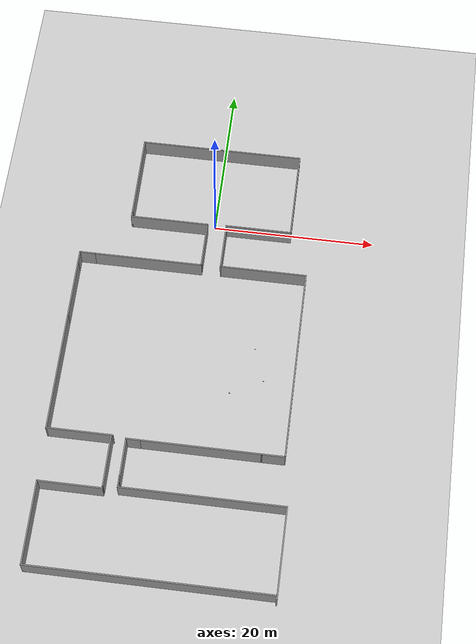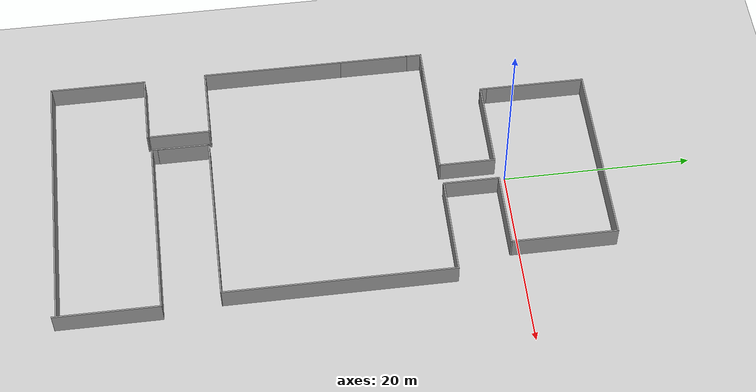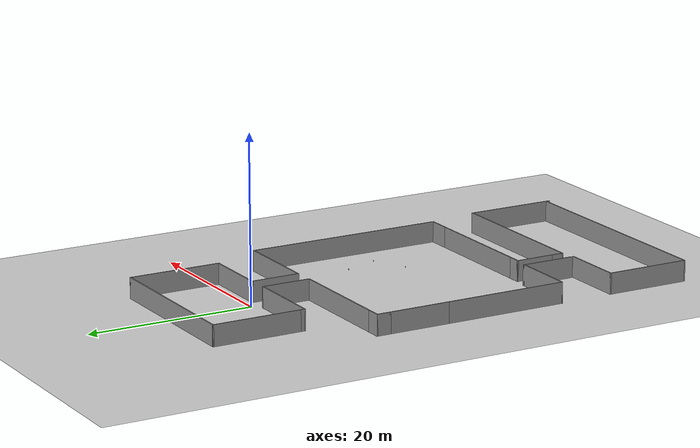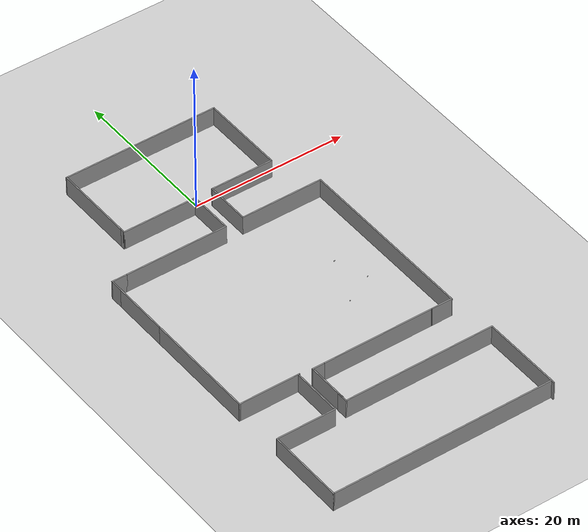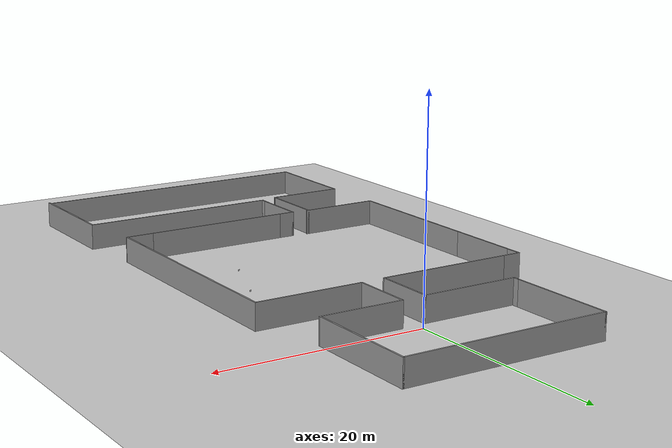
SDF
<sdf version="1.6">
 <world name="default">
  <light name="sun" type="directional">
   <pose>0 0 10 0 -0 0</pose>
   <diffuse>0.8 0.8 0.8 1</diffuse>
   <specular>0.2 0.2 0.2 1</specular>
   <attenuation>
    <range>1000</range>
    <constant>0.9</constant>
    <linear>0.01</linear>
    <quadratic>0.001</quadratic>
   </attenuation>
   <direction>-0.5 0.1 -0.9</direction>
  </light>
  <model name="ground_plane">
   <static>1</static>
   <link name="link">
    <collision name="collision">
     <geometry><plane><normal>0 0 1</normal><size>100 100</size></plane></geometry>
     <surface>
      <contact><collide_bitmask>65535</collide_bitmask></contact>
      <friction><ode><mu>100</mu><mu2>50</mu2></ode></friction>
     </surface>
    </collision>
    <visual name="visual">
     <cast_shadows>0</cast_shadows>
     <geometry><plane><normal>0 0 1</normal><size>100 100</size></plane></geometry>
     <material>
      <script><uri>file://media/materials/scripts/gazebo.material</uri><name>Gazebo/Grey</name></script>
     </material>
    </visual>
   </link>
  </model>
  <gravity>0 0 -9.8</gravity>
  <magnetic_field>6e-06 2.3e-05 -4.2e-05</magnetic_field>
  <atmosphere type="adiabatic"/>
  <physics name="default_physics" default="0" type="ode">
   <max_step_size>0.002</max_step_size>
   <real_time_factor>1</real_time_factor>
   <real_time_update_rate>2500</real_time_update_rate>
  </physics>
  <scene><ambient>0.4 0.4 0.4 1</ambient><background>0.7 0.7 0.7 1</background><shadows>1</shadows></scene>
  <audio><device>default</device></audio>
  <spherical_coordinates>
   <surface_model>EARTH_WGS84</surface_model>
   <latitude_deg>0</latitude_deg>
   <longitude_deg>0</longitude_deg>
   <elevation>0</elevation>
   <heading_deg>0</heading_deg>
  </spherical_coordinates>
  <model name="rock">
   <link name="link">
    <inertial>
     <mass>1</mass>
     <inertia><ixx>1</ixx><ixy>0</ixy><ixz>0</ixz><iyy>1</iyy><iyz>0</iyz><izz>1</izz></inertia>
    </inertial>
    <visual name="visual">
     <geometry><mesh><scale>1 1 1</scale><uri>model://rock/meshes/model.dae</uri></mesh></geometry>
     <transparency>1</transparency>
     <material>
      <shader type="vertex"><normal_map>__default__</normal_map></shader>
      <script><name>ModelPreview_1::link::visual_MATERIAL_</name><uri>__default__</uri></script>
      <ambient>0 0 0 1</ambient>
      <diffuse>0 0 0 1</diffuse>
      <specular>0 0 0 1</specular>
      <emissive>0 0 0 1</emissive>
     </material>
    </visual>
    <collision name="collision">
     <geometry>
      <mesh><uri>/usr/share/gazebo-9/models/rock/meshes/model.dae</uri><scale>1 1 1</scale></mesh>
     </geometry>
     <surface>
      <friction>
       <ode><mu>1</mu><mu2>1</mu2><fdir1>0 0 0</fdir1><slip1>0</slip1><slip2>0</slip2></ode>
       <torsional>
        <coefficient>1</coefficient>
        <patch_radius>0</patch_radius>
        <surface_radius>0</surface_radius>
        <use_patch_radius>1</use_patch_radius>
        <ode><slip>0</slip></ode>
       </torsional>
      </friction>
      <bounce><restitution_coefficient>0</restitution_coefficient><threshold>1e+06</threshold></bounce>
      <contact>
       <collide_without_contact>0</collide_without_contact>
       <collide_without_contact_bitmask>1</collide_without_contact_bitmask>
       <collide_bitmask>1</collide_bitmask>
       <ode>
        <soft_cfm>0</soft_cfm>
        <soft_erp>0.2</soft_erp>
        <kp>1e+13</kp>
        <kd>1</kd>
        <max_vel>0.01</max_vel>
        <min_depth>0</min_depth>
       </ode>
       <bullet>
        <split_impulse>1</split_impulse>
        <split_impulse_penetration_threshold>-0.01</split_impulse_penetration_threshold>
        <soft_cfm>0</soft_cfm>
        <soft_erp>0.2</soft_erp>
        <kp>1e+13</kp>
        <kd>1</kd>
       </bullet>
      </contact>
     </surface>
    </collision>
   </link>
   <static>1</static>
   <pose>1.77676 1.6025 0 0 -0 0</pose>
  </model>
  <model name="rock_0">
   <link name="link">
    <inertial>
     <mass>1</mass>
     <inertia><ixx>1</ixx><ixy>0</ixy><ixz>0</ixz><iyy>1</iyy><iyz>0</iyz><izz>1</izz></inertia>
    </inertial>
    <visual name="visual">
     <geometry><mesh><scale>1 1 1</scale><uri>model://rock/meshes/model.dae</uri></mesh></geometry>
     <transparency>1</transparency>
     <material>
      <shader type="vertex"><normal_map>__default__</normal_map></shader>
      <script><name>ModelPreview_1::link::visual_MATERIAL_</name><uri>__default__</uri></script>
      <ambient>0 0 0 1</ambient>
      <diffuse>0 0 0 1</diffuse>
      <specular>0 0 0 1</specular>
      <emissive>0 0 0 1</emissive>
     </material>
    </visual>
    <collision name="collision">
     <geometry>
      <mesh><uri>/usr/share/gazebo-9/models/rock/meshes/model.dae</uri><scale>1 1 1</scale></mesh>
     </geometry>
     <surface>
      <friction>
       <ode><mu>1</mu><mu2>1</mu2><fdir1>0 0 0</fdir1><slip1>0</slip1><slip2>0</slip2></ode>
       <torsional>
        <coefficient>1</coefficient>
        <patch_radius>0</patch_radius>
        <surface_radius>0</surface_radius>
        <use_patch_radius>1</use_patch_radius>
        <ode><slip>0</slip></ode>
       </torsional>
      </friction>
      <bounce><restitution_coefficient>0</restitution_coefficient><threshold>1e+06</threshold></bounce>
      <contact>
       <collide_without_contact>0</collide_without_contact>
       <collide_without_contact_bitmask>1</collide_without_contact_bitmask>
       <collide_bitmask>1</collide_bitmask>
       <ode>
        <soft_cfm>0</soft_cfm>
        <soft_erp>0.2</soft_erp>
        <kp>1e+13</kp>
        <kd>1</kd>
        <max_vel>0.01</max_vel>
        <min_depth>0</min_depth>
       </ode>
       <bullet>
        <split_impulse>1</split_impulse>
        <split_impulse_penetration_threshold>-0.01</split_impulse_penetration_threshold>
        <soft_cfm>0</soft_cfm>
        <soft_erp>0.2</soft_erp>
        <kp>1e+13</kp>
        <kd>1</kd>
       </bullet>
      </contact>
     </surface>
    </collision>
   </link>
   <static>1</static>
   <pose>12.6931 -7.30024 0 0 -0 0</pose>
  </model>
  <model name="tietu_4">
   <static>1</static>
   <link name="link">
    <pose>0 0 0.1 1.57 -0 0</pose>
    <collision name="collision">
     <geometry><plane><normal>0 0 1</normal><size>0.15 0.15</size></plane></geometry>
     <surface><friction><ode><mu>100</mu><mu2>50</mu2></ode></friction></surface>
    </collision>
    <visual name="visual">
     <cast_shadows>0</cast_shadows>
     <geometry><plane><normal>0 0 1</normal><size>0.15 0.15</size></plane></geometry>
     <material>
      <script>
       <uri>model://tietu/materials/scripts</uri>
       <uri>model://tietu/materials/textures</uri>
       <name>tietu</name>
      </script>
     </material>
    </visual>
   </link>
   <pose>6.95986 -16.43 0 0 -0 0</pose>
  </model>
  <model name="tietu2_3">
   <static>1</static>
   <link name="link">
    <pose>0 0 0.1 1.57 -0 0</pose>
    <collision name="collision">
     <geometry><plane><normal>0 0 1</normal><size>0.15 0.15</size></plane></geometry>
     <surface><friction><ode><mu>100</mu><mu2>50</mu2></ode></friction></surface>
    </collision>
    <visual name="visual">
     <cast_shadows>0</cast_shadows>
     <geometry><plane><normal>0 0 1</normal><size>0.15 0.15</size></plane></geometry>
     <material>
      <script>
       <uri>model://tietu2/materials/scripts</uri>
       <uri>model://tietu2/materials/textures</uri>
       <name>tietu2</name>
      </script>
     </material>
    </visual>
   </link>
   <pose>4.56237 -22.6092 0 0 -0 0</pose>
  </model>
  <model name="tietu2_4">
   <static>1</static>
   <link name="link">
    <pose>0 0 0.1 1.57 -0 0</pose>
    <collision name="collision">
     <geometry><plane><normal>0 0 1</normal><size>0.15 0.15</size></plane></geometry>
     <surface><friction><ode><mu>100</mu><mu2>50</mu2></ode></friction></surface>
    </collision>
    <visual name="visual">
     <cast_shadows>0</cast_shadows>
     <geometry><plane><normal>0 0 1</normal><size>0.15 0.15</size></plane></geometry>
     <material>
      <script>
       <uri>model://tietu2/materials/scripts</uri>
       <uri>model://tietu2/materials/textures</uri>
       <name>tietu2</name>
      </script>
     </material>
    </visual>
   </link>
   <pose>8.433 -20.583 0 0 -0 0</pose>
  </model>
  <model name="Untitled_0">
   <pose>-1.5624 -18.819 0 0 -0 0</pose>
   <link name="Wall_104">
    <collision name="Wall_104_Collision">
     <geometry><box><size>7.5 0.15 2.5</size></box></geometry>
     <pose>0 0 1.25 0 -0 0</pose>
    </collision>
    <visual name="Wall_104_Visual">
     <pose>0 0 1.25 0 -0 0</pose>
     <geometry><box><size>7.5 0.15 2.5</size></box></geometry>
     <material>
      <script><uri>file://media/materials/scripts/gazebo.material</uri><name>Gazebo/Grey</name></script>
      <ambient>1 1 1 1</ambient>
     </material>
     <meta><layer>0</layer></meta>
    </visual>
    <pose>-14.5372 6.65347 0 0 -0 -1.5708</pose>
   </link>
   <link name="Wall_106">
    <collision name="Wall_106_Collision">
     <geometry><box><size>15 0.15 2.5</size></box></geometry>
     <pose>0 0 1.25 0 -0 0</pose>
    </collision>
    <visual name="Wall_106_Visual">
     <pose>0 0 1.25 0 -0 0</pose>
     <geometry><box><size>15 0.15 2.5</size></box></geometry>
     <material>
      <script><uri>file://media/materials/scripts/gazebo.material</uri><name>Gazebo/Grey</name></script>
      <ambient>1 1 1 1</ambient>
     </material>
     <meta><layer>0</layer></meta>
    </visual>
    <pose>-14.5372 -4.44653 0 0 -0 -1.5708</pose>
   </link>
   <link name="Wall_109">
    <collision name="Wall_109_Collision">
     <geometry><box><size>8.03429 0.15 2.5</size></box></geometry>
     <pose>0 0 1.25 0 -0 0</pose>
    </collision>
    <visual name="Wall_109_Visual">
     <pose>0 0 1.25 0 -0 0</pose>
     <geometry><box><size>8.03429 0.15 2.5</size></box></geometry>
     <material>
      <script><uri>file://media/materials/scripts/gazebo.material</uri><name>Gazebo/Grey</name></script>
      <ambient>1 1 1 1</ambient>
     </material>
     <meta><layer>0</layer></meta>
    </visual>
    <pose>-10.5951 -11.8715 0 0 -0 0</pose>
   </link>
   <link name="Wall_110">
    <collision name="Wall_110_Collision">
     <geometry><box><size>6.5 0.15 2.5</size></box></geometry>
     <pose>0 0 1.25 0 -0 0</pose>
    </collision>
    <visual name="Wall_110_Visual">
     <pose>0 0 1.25 0 -0 0</pose>
     <geometry><box><size>6.5 0.15 2.5</size></box></geometry>
     <material>
      <script><uri>file://media/materials/scripts/gazebo.material</uri><name>Gazebo/Grey</name></script>
      <ambient>1 1 1 1</ambient>
     </material>
     <meta><layer>0</layer></meta>
    </visual>
    <pose>-6.79505 -15.0465 0 0 -0 -1.5708</pose>
   </link>
   <link name="Wall_114">
    <collision name="Wall_114_Collision">
     <geometry><box><size>14.5 0.15 2.5</size></box></geometry>
     <pose>0 0 1.25 0 -0 0</pose>
    </collision>
    <visual name="Wall_114_Visual">
     <pose>0 0 1.25 0 -0 0</pose>
     <geometry><box><size>14.5 0.15 2.5</size></box></geometry>
     <material>
      <script><uri>file://media/materials/scripts/gazebo.material</uri><name>Gazebo/Grey</name></script>
      <ambient>1 1 1 1</ambient>
     </material>
     <meta><layer>0</layer></meta>
    </visual>
    <pose>3.74369 -12.0851 0 0 -0 0</pose>
   </link>
   <link name="Wall_116">
    <collision name="Wall_116_Collision">
     <geometry><box><size>1.75 0.15 2.5</size></box></geometry>
     <pose>0 0 1.25 0 -0 0</pose>
    </collision>
    <visual name="Wall_116_Visual">
     <pose>0 0 1.25 0 -0 0</pose>
     <geometry><box><size>1.75 0.15 2.5</size></box></geometry>
     <material>
      <script><uri>file://media/materials/scripts/gazebo.material</uri><name>Gazebo/Grey</name></script>
      <ambient>1 1 1 1</ambient>
     </material>
     <meta><layer>0</layer></meta>
    </visual>
    <pose>-4.23131 -12.0851 0 0 -0 3.14159</pose>
   </link>
   <link name="Wall_118">
    <collision name="Wall_118_Collision">
     <geometry><box><size>5.5 0.15 2.5</size></box></geometry>
     <pose>0 0 1.25 0 -0 0</pose>
    </collision>
    <visual name="Wall_118_Visual">
     <pose>0 0 1.25 0 -0 0</pose>
     <geometry><box><size>5.5 0.15 2.5</size></box></geometry>
     <material>
      <script><uri>file://media/materials/scripts/gazebo.material</uri><name>Gazebo/Grey</name></script>
      <ambient>1 1 1 1</ambient>
     </material>
     <meta><layer>0</layer></meta>
    </visual>
    <pose>-5.03131 -14.7601 0 0 -0 -1.5708</pose>
   </link>
   <link name="Wall_122">
    <collision name="Wall_122_Collision">
     <geometry><box><size>1.5 0.15 2.5</size></box></geometry>
     <pose>0 0 1.25 0 -0 0</pose>
    </collision>
    <visual name="Wall_122_Visual">
     <pose>0 0 1.25 0 -0 0</pose>
     <geometry><box><size>1.5 0.15 2.5</size></box></geometry>
     <material>
      <script><uri>file://media/materials/scripts/gazebo.material</uri><name>Gazebo/Grey</name></script>
      <ambient>1 1 1 1</ambient>
     </material>
     <meta><layer>0</layer></meta>
    </visual>
    <pose>-5.0628 -17.4535 0 0 -0 -1.5708</pose>
   </link>
   <link name="Wall_124">
    <collision name="Wall_124_Collision">
     <geometry><box><size>10.75 0.15 2.5</size></box></geometry>
     <pose>0 0 1.25 0 -0 0</pose>
    </collision>
    <visual name="Wall_124_Visual">
     <pose>0 0 1.25 0 -0 0</pose>
     <geometry><box><size>10.75 0.15 2.5</size></box></geometry>
     <material>
      <script><uri>file://media/materials/scripts/gazebo.material</uri><name>Gazebo/Grey</name></script>
      <ambient>1 1 1 1</ambient>
     </material>
     <meta><layer>0</layer></meta>
    </visual>
    <pose>8.3628 12.0285 0 0 -0 0</pose>
   </link>
   <link name="Wall_126">
    <collision name="Wall_126_Collision">
     <geometry><box><size>24.25 0.15 2.5</size></box></geometry>
     <pose>0 0 1.25 0 -0 0</pose>
    </collision>
    <visual name="Wall_126_Visual">
     <pose>0 0 1.25 0 -0 0</pose>
     <geometry><box><size>24.25 0.15 2.5</size></box></geometry>
     <material>
      <script><uri>file://media/materials/scripts/gazebo.material</uri><name>Gazebo/Grey</name></script>
      <ambient>1 1 1 1</ambient>
     </material>
     <meta><layer>0</layer></meta>
    </visual>
    <pose>13.6628 -0.021535 0 0 -0 -1.5708</pose>
   </link>
   <link name="Wall_127">
    <collision name="Wall_127_Collision">
     <geometry><box><size>2.89414 0.15 2.5</size></box></geometry>
     <pose>0 0 1.25 0 -0 0</pose>
    </collision>
    <visual name="Wall_127_Visual">
     <pose>0 0 1.25 0 -0 0</pose>
     <geometry><box><size>2.89414 0.15 2.5</size></box></geometry>
     <material>
      <script><uri>file://media/materials/scripts/gazebo.material</uri><name>Gazebo/Grey</name></script>
      <ambient>1 1 1 1</ambient>
     </material>
     <meta><layer>0</layer></meta>
    </visual>
    <pose>12.2907 -12.0783 0 0 -0 -3.13666</pose>
   </link>
   <link name="Wall_136">
    <collision name="Wall_136_Collision">
     <geometry><box><size>19.75 0.15 2.5</size></box></geometry>
     <pose>0 0 1.25 0 -0 0</pose>
    </collision>
    <visual name="Wall_136_Visual">
     <pose>0 0 1.25 0 -0 0</pose>
     <geometry><box><size>19.75 0.15 2.5</size></box></geometry>
     <material>
      <script><uri>file://media/materials/scripts/gazebo.material</uri><name>Gazebo/Grey</name></script>
      <ambient>1 1 1 1</ambient>
     </material>
     <meta><layer>0</layer></meta>
    </visual>
    <pose>4.7372 -18.1285 0 0 -0 0</pose>
   </link>
   <link name="Wall_137">
    <collision name="Wall_137_Collision">
     <geometry><box><size>11 0.15 2.5</size></box></geometry>
     <pose>0 0 1.25 0 -0 0</pose>
    </collision>
    <visual name="Wall_137_Visual">
     <pose>0 0 1.25 0 -0 0</pose>
     <geometry><box><size>11 0.15 2.5</size></box></geometry>
     <material>
      <script><uri>file://media/materials/scripts/gazebo.material</uri><name>Gazebo/Grey</name></script>
      <ambient>1 1 1 1</ambient>
     </material>
     <meta><layer>0</layer></meta>
    </visual>
    <pose>14.5372 -23.5535 0 0 -0 -1.5708</pose>
   </link>
   <link name="Wall_144">
    <collision name="Wall_144_Collision">
     <geometry><box><size>7.75 0.15 2.5</size></box></geometry>
     <pose>0 0 1.25 0 -0 0</pose>
    </collision>
    <visual name="Wall_144_Visual">
     <pose>0 0 1.25 0 -0 0</pose>
     <geometry><box><size>7.75 0.15 2.5</size></box></geometry>
     <material>
      <script><uri>file://media/materials/scripts/gazebo.material</uri><name>Gazebo/Grey</name></script>
      <ambient>1 1 1 1</ambient>
     </material>
     <meta><layer>0</layer></meta>
    </visual>
    <pose>-10.6159 -18.496 0 0 -0 3.14159</pose>
   </link>
   <link name="Wall_145">
    <collision name="Wall_145_Collision">
     <geometry><box><size>10.25 0.15 2.5</size></box></geometry>
     <pose>0 0 1.25 0 -0 0</pose>
    </collision>
    <visual name="Wall_145_Visual">
     <pose>0 0 1.25 0 -0 0</pose>
     <geometry><box><size>10.25 0.15 2.5</size></box></geometry>
     <material>
      <script><uri>file://media/materials/scripts/gazebo.material</uri><name>Gazebo/Grey</name></script>
      <ambient>1 1 1 1</ambient>
     </material>
     <meta><layer>0</layer></meta>
    </visual>
    <pose>-14.4159 -23.546 0 0 -0 -1.5708</pose>
   </link>
   <link name="Wall_146">
    <collision name="Wall_146_Collision">
     <geometry><box><size>29 0.15 2.5</size></box></geometry>
     <pose>0 0 1.25 0 -0 0</pose>
    </collision>
    <visual name="Wall_146_Visual">
     <pose>0 0 1.25 0 -0 0</pose>
     <geometry><box><size>29 0.15 2.5</size></box></geometry>
     <material>
      <script><uri>file://media/materials/scripts/gazebo.material</uri><name>Gazebo/Grey</name></script>
      <ambient>1 1 1 1</ambient>
     </material>
     <meta><layer>0</layer></meta>
    </visual>
    <pose>0.00908 -28.596 0 0 -0 0</pose>
   </link>
   <link name="Wall_52">
    <collision name="Wall_52_Collision">
     <geometry><box><size>20.25 0.15 2.5</size></box></geometry>
     <pose>0 0 1.25 0 -0 0</pose>
    </collision>
    <visual name="Wall_52_Visual">
     <pose>0 0 1.25 0 -0 0</pose>
     <geometry><box><size>20.25 0.15 2.5</size></box></geometry>
     <material>
      <script><uri>file://media/materials/scripts/gazebo.material</uri><name>Gazebo/Grey</name></script>
      <ambient>1 1 1 1</ambient>
     </material>
     <meta><layer>0</layer></meta>
    </visual>
    <pose>1.1128 28.9785 0 0 -0 0</pose>
   </link>
   <link name="Wall_54">
    <collision name="Wall_54_Collision">
     <geometry><box><size>10.75 0.15 2.5</size></box></geometry>
     <pose>0 0 1.25 0 -0 0</pose>
    </collision>
    <visual name="Wall_54_Visual">
     <pose>0 0 1.25 0 -0 0</pose>
     <geometry><box><size>10.75 0.15 2.5</size></box></geometry>
     <material>
      <script><uri>file://media/materials/scripts/gazebo.material</uri><name>Gazebo/Grey</name></script>
      <ambient>1 1 1 1</ambient>
     </material>
     <meta><layer>0</layer></meta>
    </visual>
    <pose>-8.9372 23.6785 0 0 -0 -1.5708</pose>
   </link>
   <link name="Wall_55">
    <collision name="Wall_55_Collision">
     <geometry><box><size>0.75 0.15 2.5</size></box></geometry>
     <pose>0 0 1.25 0 -0 0</pose>
    </collision>
    <visual name="Wall_55_Visual">
     <pose>0 0 1.25 0 -0 0</pose>
     <geometry><box><size>0.75 0.15 2.5</size></box></geometry>
     <material>
      <script><uri>file://media/materials/scripts/gazebo.material</uri><name>Gazebo/Grey</name></script>
      <ambient>1 1 1 1</ambient>
     </material>
     <meta><layer>0</layer></meta>
    </visual>
    <pose>-8.9372 18.0785 0 0 -0 -1.5708</pose>
   </link>
   <link name="Wall_56">
    <collision name="Wall_56_Collision">
     <geometry><box><size>9.75 0.15 2.5</size></box></geometry>
     <pose>0 0 1.25 0 -0 0</pose>
    </collision>
    <visual name="Wall_56_Visual">
     <pose>0 0 1.25 0 -0 0</pose>
     <geometry><box><size>9.75 0.15 2.5</size></box></geometry>
     <material>
      <script><uri>file://media/materials/scripts/gazebo.material</uri><name>Gazebo/Grey</name></script>
      <ambient>1 1 1 1</ambient>
     </material>
     <meta><layer>0</layer></meta>
    </visual>
    <pose>-4.1372 17.7785 0 0 -0 0</pose>
   </link>
   <link name="Wall_58">
    <collision name="Wall_58_Collision">
     <geometry><box><size>11.25 0.15 2.5</size></box></geometry>
     <pose>0 0 1.25 0 -0 0</pose>
    </collision>
    <visual name="Wall_58_Visual">
     <pose>0 0 1.25 0 -0 0</pose>
     <geometry><box><size>11.25 0.15 2.5</size></box></geometry>
     <material>
      <script><uri>file://media/materials/scripts/gazebo.material</uri><name>Gazebo/Grey</name></script>
      <ambient>1 1 1 1</ambient>
     </material>
     <meta><layer>0</layer></meta>
    </visual>
    <pose>11.1628 23.4285 0 0 -0 -1.5708</pose>
   </link>
   <link name="Wall_59">
    <collision name="Wall_59_Collision">
     <geometry><box><size>8.25 0.15 2.5</size></box></geometry>
     <pose>0 0 1.25 0 -0 0</pose>
    </collision>
    <visual name="Wall_59_Visual">
     <pose>0 0 1.25 0 -0 0</pose>
     <geometry><box><size>8.25 0.15 2.5</size></box></geometry>
     <material>
      <script><uri>file://media/materials/scripts/gazebo.material</uri><name>Gazebo/Grey</name></script>
      <ambient>1 1 1 1</ambient>
     </material>
     <meta><layer>0</layer></meta>
    </visual>
    <pose>7.1128 17.8785 0 0 -0 3.14159</pose>
   </link>
   <link name="Wall_61">
    <collision name="Wall_61_Collision">
     <geometry><box><size>6 0.15 2.5</size></box></geometry>
     <pose>0 0 1.25 0 -0 0</pose>
    </collision>
    <visual name="Wall_61_Visual">
     <pose>0 0 1.25 0 -0 0</pose>
     <geometry><box><size>6 0.15 2.5</size></box></geometry>
     <material>
      <script><uri>file://media/materials/scripts/gazebo.material</uri><name>Gazebo/Grey</name></script>
      <ambient>1 1 1 1</ambient>
     </material>
     <meta><layer>0</layer></meta>
    </visual>
    <pose>0.662799 14.8535 0 0 -0 -1.5708</pose>
   </link>
   <link name="Wall_63">
    <collision name="Wall_63_Collision">
     <geometry><box><size>6 0.15 2.5</size></box></geometry>
     <pose>0 0 1.25 0 -0 0</pose>
    </collision>
    <visual name="Wall_63_Visual">
     <pose>0 0 1.25 0 -0 0</pose>
     <geometry><box><size>6 0.15 2.5</size></box></geometry>
     <material>
      <script><uri>file://media/materials/scripts/gazebo.material</uri><name>Gazebo/Grey</name></script>
      <ambient>1 1 1 1</ambient>
     </material>
     <meta><layer>0</layer></meta>
    </visual>
    <pose>3.0628 14.9535 0 0 -0 -1.5708</pose>
   </link>
   <link name="Wall_65">
    <collision name="Wall_65_Collision">
     <geometry><box><size>13.5 0.15 2.5</size></box></geometry>
     <pose>0 0 1.25 0 -0 0</pose>
    </collision>
    <visual name="Wall_65_Visual">
     <pose>0 0 1.25 0 -0 0</pose>
     <geometry><box><size>13.5 0.15 2.5</size></box></geometry>
     <material>
      <script><uri>file://media/materials/scripts/gazebo.material</uri><name>Gazebo/Grey</name></script>
      <ambient>1 1 1 1</ambient>
     </material>
     <meta><layer>0</layer></meta>
    </visual>
    <pose>-6.0122 11.9285 0 0 -0 3.14159</pose>
   </link>
   <link name="Wall_67">
    <collision name="Wall_67_Collision">
     <geometry><box><size>2 0.15 2.5</size></box></geometry>
     <pose>0 0 1.25 0 -0 0</pose>
    </collision>
    <visual name="Wall_67_Visual">
     <pose>0 0 1.25 0 -0 0</pose>
     <geometry><box><size>2 0.15 2.5</size></box></geometry>
     <material>
      <script><uri>file://media/materials/scripts/gazebo.material</uri><name>Gazebo/Grey</name></script>
      <ambient>1 1 1 1</ambient>
     </material>
     <meta><layer>0</layer></meta>
    </visual>
    <pose>-13.6122 11.9285 0 0 -0 3.14159</pose>
   </link>
   <link name="Wall_68">
    <collision name="Wall_68_Collision">
     <geometry><box><size>1.75 0.15 2.5</size></box></geometry>
     <pose>0 0 1.25 0 -0 0</pose>
    </collision>
    <visual name="Wall_68_Visual">
     <pose>0 0 1.25 0 -0 0</pose>
     <geometry><box><size>1.75 0.15 2.5</size></box></geometry>
     <material>
      <script><uri>file://media/materials/scripts/gazebo.material</uri><name>Gazebo/Grey</name></script>
      <ambient>1 1 1 1</ambient>
     </material>
     <meta><layer>0</layer></meta>
    </visual>
    <pose>-14.5372 11.1285 0 0 -0 -1.5708</pose>
   </link>
   <static>1</static>
  </model>
 </world>
</sdf>
